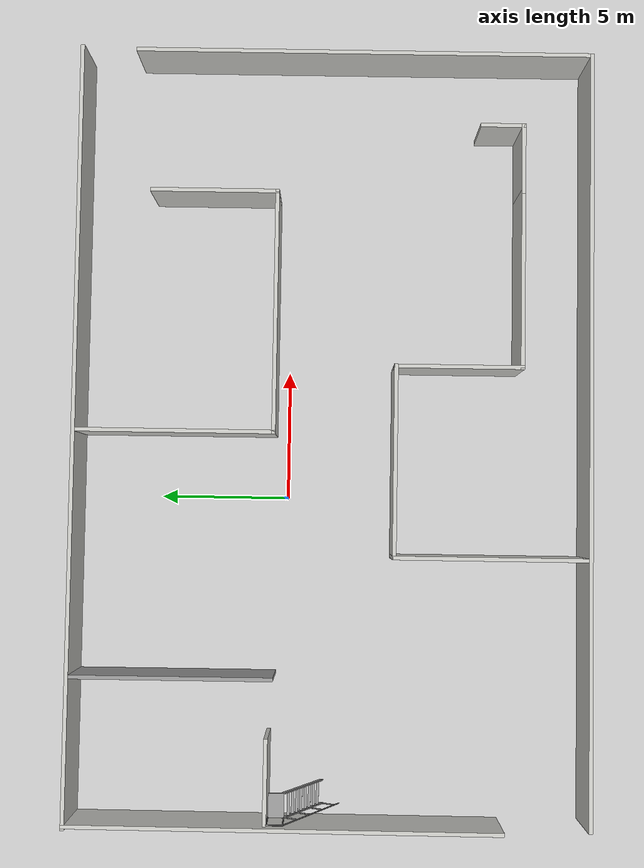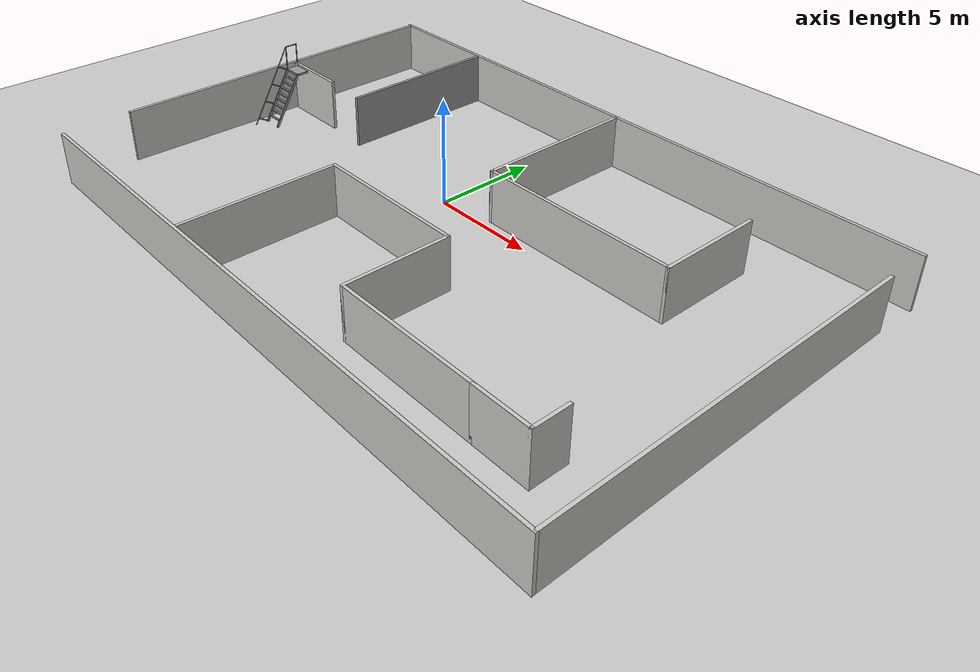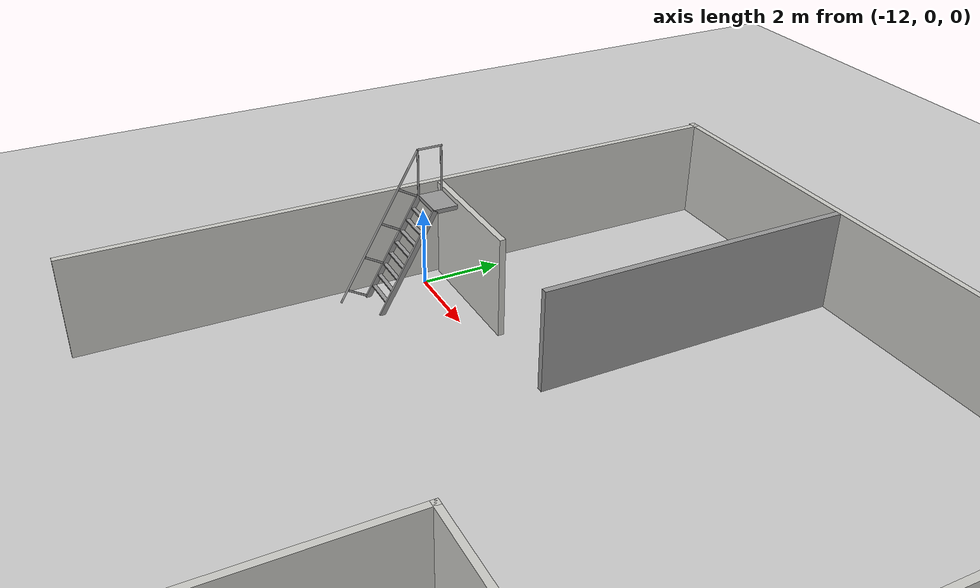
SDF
<sdf version="1.6">
 <world name="default">
  <light name="sun" type="directional">
   <pose>0 0 10 0 -0 0</pose>
   <diffuse>0.8 0.8 0.8 1</diffuse>
   <specular>0.2 0.2 0.2 1</specular>
   <attenuation>
    <range>1000</range>
    <constant>0.9</constant>
    <linear>0.01</linear>
    <quadratic>0.001</quadratic>
   </attenuation>
   <direction>-0.5 0.1 -0.9</direction>
  </light>
  <model name="ground_plane">
   <static>1</static>
   <link name="link">
    <collision name="collision">
     <geometry><plane><normal>0 0 1</normal><size>100 100</size></plane></geometry>
     <surface>
      <contact><collide_bitmask>65535</collide_bitmask></contact>
      <friction><ode><mu>100</mu><mu2>50</mu2></ode></friction>
     </surface>
    </collision>
    <visual name="visual">
     <cast_shadows>0</cast_shadows>
     <geometry><plane><normal>0 0 1</normal><size>100 100</size></plane></geometry>
     <material>
      <script><uri>file://media/materials/scripts/gazebo.material</uri><name>Gazebo/Grey</name></script>
     </material>
    </visual>
   </link>
  </model>
  <gravity>0 0 -9.8</gravity>
  <magnetic_field>6e-06 2.3e-05 -4.2e-05</magnetic_field>
  <atmosphere type="adiabatic"/>
  <physics name="default_physics" default="0" type="ode">
   <max_step_size>0.001</max_step_size>
   <real_time_factor>1</real_time_factor>
   <real_time_update_rate>1000</real_time_update_rate>
  </physics>
  <scene><ambient>0.4 0.4 0.4 1</ambient><background>0.7 0.7 0.7 1</background><shadows>1</shadows></scene>
  <spherical_coordinates>
   <surface_model>EARTH_WGS84</surface_model>
   <latitude_deg>0</latitude_deg>
   <longitude_deg>0</longitude_deg>
   <elevation>0</elevation>
   <heading_deg>0</heading_deg>
  </spherical_coordinates>
  <model name="factory">
   <pose>2.46352 -1.71456 0 0 -0 0</pose>
   <link name="Wall_0">
    <collision name="Wall_0_Collision">
     <geometry><box><size>29.9191 0.15 2.5</size></box></geometry>
     <pose>0 0 1.25 0 -0 0</pose>
    </collision>
    <visual name="Wall_0_Visual">
     <pose>0 0 1.25 0 -0 0</pose>
     <geometry><box><size>29.9191 0.15 2.5</size></box></geometry>
     <material>
      <script><uri>file://media/materials/scripts/gazebo.material</uri><name>Gazebo/CeilingTiled</name></script>
      <ambient>1 1 1 1</ambient>
     </material>
     <meta><layer>0</layer></meta>
    </visual>
    <pose>0.043969 -9.92957 0 0 -0 0</pose>
   </link>
   <link name="Wall_11">
    <collision name="Wall_11_Collision">
     <geometry><box><size>7.75 0.15 2.5</size></box></geometry>
     <pose>0 0 1.25 0 -0 0</pose>
    </collision>
    <visual name="Wall_11_Visual">
     <pose>0 0 1.25 0 -0 0</pose>
     <geometry><box><size>7.75 0.15 2.5</size></box></geometry>
     <material>
      <script><uri>file://media/materials/scripts/gazebo.material</uri><name>Gazebo/Grey</name></script>
      <ambient>1 1 1 1</ambient>
     </material>
     <meta><layer>0</layer></meta>
    </visual>
    <pose>-9.34775 5.97949 0 0 -0 1.5708</pose>
   </link>
   <link name="Wall_15">
    <collision name="Wall_15_Collision">
     <geometry><box><size>3.25 0.15 2.5</size></box></geometry>
     <pose>0 0 1.25 0 -0 0</pose>
    </collision>
    <visual name="Wall_15_Visual">
     <pose>0 0 1.25 0 -0 0</pose>
     <geometry><box><size>3.25 0.15 2.5</size></box></geometry>
     <material>
      <script><uri>file://media/materials/scripts/gazebo.material</uri><name>Gazebo/CeilingTiled</name></script>
      <ambient>1 1 1 1</ambient>
     </material>
     <meta><layer>0</layer></meta>
    </visual>
    <pose>-13.1915 2.33437 0 0 -0 3.14159</pose>
   </link>
   <link name="Wall_17">
    <collision name="Wall_17_Collision">
     <geometry><box><size>7.75 0.15 2.5</size></box></geometry>
     <pose>0 0 1.25 0 -0 0</pose>
    </collision>
    <visual name="Wall_17_Visual">
     <pose>0 0 1.25 0 -0 0</pose>
     <geometry><box><size>7.75 0.15 2.5</size></box></geometry>
     <material>
      <script><uri>file://media/materials/scripts/gazebo.material</uri><name>Gazebo/CeilingTiled</name></script>
      <ambient>1 1 1 1</ambient>
     </material>
     <meta><layer>0</layer></meta>
    </visual>
    <pose>0.048773 6.04077 0 0 -0 -1.5708</pose>
   </link>
   <link name="Wall_18">
    <collision name="Wall_18_Collision">
     <geometry><box><size>9.5 0.15 2.5</size></box></geometry>
     <pose>0 0 1.25 0 -0 0</pose>
    </collision>
    <visual name="Wall_18_Visual">
     <pose>0 0 1.25 0 -0 0</pose>
     <geometry><box><size>9.5 0.15 2.5</size></box></geometry>
     <material>
      <script><uri>file://media/materials/scripts/gazebo.material</uri><name>Gazebo/CeilingTiled</name></script>
      <ambient>1 1 1 1</ambient>
     </material>
     <meta><layer>0</layer></meta>
    </visual>
    <pose>4.72377 2.24077 0 0 -0 0</pose>
   </link>
   <link name="Wall_19">
    <collision name="Wall_19_Collision">
     <geometry><box><size>5 0.15 2.5</size></box></geometry>
     <pose>0 0 1.25 0 -0 0</pose>
    </collision>
    <visual name="Wall_19_Visual">
     <pose>0 0 1.25 0 -0 0</pose>
     <geometry><box><size>5 0.15 2.5</size></box></geometry>
     <material>
      <script><uri>file://media/materials/scripts/gazebo.material</uri><name>Gazebo/CeilingTiled</name></script>
      <ambient>1 1 1 1</ambient>
     </material>
     <meta><layer>0</layer></meta>
    </visual>
    <pose>9.39877 4.66577 0 0 -0 1.5708</pose>
   </link>
   <link name="Wall_2">
    <collision name="Wall_2_Collision">
     <geometry><box><size>17.75 0.15 2.5</size></box></geometry>
     <pose>0 0 1.25 0 -0 0</pose>
    </collision>
    <visual name="Wall_2_Visual">
     <pose>0 0 1.25 0 -0 0</pose>
     <geometry><box><size>17.75 0.15 2.5</size></box></geometry>
     <material>
      <script><uri>file://media/materials/scripts/gazebo.material</uri><name>Gazebo/CeilingTiled</name></script>
      <ambient>1 1 1 1</ambient>
     </material>
     <meta><layer>0</layer></meta>
    </visual>
    <pose>14.9283 -1.0482 0 0 -0 1.5708</pose>
   </link>
   <link name="Wall_22">
    <collision name="Wall_22_Collision">
     <geometry><box><size>7.5 0.15 2.5</size></box></geometry>
     <pose>0 0 1.25 0 -0 0</pose>
    </collision>
    <visual name="Wall_22_Visual">
     <pose>0 0 1.25 0 -0 0</pose>
     <geometry><box><size>7.5 0.15 2.5</size></box></geometry>
     <material>
      <script><uri>file://media/materials/scripts/gazebo.material</uri><name>Gazebo/CeilingTiled</name></script>
      <ambient>1 1 1 1</ambient>
     </material>
     <meta><layer>0</layer></meta>
    </visual>
    <pose>-4.68887 -6.11162 0 0 -0 1.5708</pose>
   </link>
   <link name="Wall_23">
    <collision name="Wall_23_Collision">
     <geometry><box><size>7.5 0.15 2.5</size></box></geometry>
     <pose>0 0 1.25 0 -0 0</pose>
    </collision>
    <visual name="Wall_23_Visual">
     <pose>0 0 1.25 0 -0 0</pose>
     <geometry><box><size>7.5 0.15 2.5</size></box></geometry>
     <material>
      <script><uri>file://media/materials/scripts/gazebo.material</uri><name>Gazebo/CeilingTiled</name></script>
      <ambient>1 1 1 1</ambient>
     </material>
     <meta><layer>0</layer></meta>
    </visual>
    <pose>-1.01387 -2.43662 0 0 -0 0</pose>
   </link>
   <link name="Wall_24">
    <collision name="Wall_24_Collision">
     <geometry><box><size>5 0.15 2.5</size></box></geometry>
     <pose>0 0 1.25 0 -0 0</pose>
    </collision>
    <visual name="Wall_24_Visual">
     <pose>0 0 1.25 0 -0 0</pose>
     <geometry><box><size>5 0.15 2.5</size></box></geometry>
     <material>
      <script><uri>file://media/materials/scripts/gazebo.material</uri><name>Gazebo/CeilingTiled</name></script>
      <ambient>1 1 1 1</ambient>
     </material>
     <meta><layer>0</layer></meta>
    </visual>
    <pose>2.66113 -4.86162 0 0 -0 -1.5708</pose>
   </link>
   <link name="Wall_25">
    <collision name="Wall_25_Collision">
     <geometry><box><size>7 0.15 2.5</size></box></geometry>
     <pose>0 0 1.25 0 -0 0</pose>
    </collision>
    <visual name="Wall_25_Visual">
     <pose>0 0 1.25 0 -0 0</pose>
     <geometry><box><size>7 0.15 2.5</size></box></geometry>
     <material>
      <script><uri>file://media/materials/scripts/gazebo.material</uri><name>Gazebo/CeilingTiled</name></script>
      <ambient>1 1 1 1</ambient>
     </material>
     <meta><layer>0</layer></meta>
    </visual>
    <pose>6.08613 -7.28662 0 0 -0 0</pose>
   </link>
   <link name="Wall_26">
    <collision name="Wall_26_Collision">
     <geometry><box><size>2.75 0.15 2.5</size></box></geometry>
     <pose>0 0 1.25 0 -0 0</pose>
    </collision>
    <visual name="Wall_26_Visual">
     <pose>0 0 1.25 0 -0 0</pose>
     <geometry><box><size>2.75 0.15 2.5</size></box></geometry>
     <material>
      <script><uri>file://media/materials/scripts/gazebo.material</uri><name>Gazebo/CeilingTiled</name></script>
      <ambient>1 1 1 1</ambient>
     </material>
     <meta><layer>0</layer></meta>
    </visual>
    <pose>10.8111 -7.28662 0 0 -0 0</pose>
   </link>
   <link name="Wall_27">
    <collision name="Wall_27_Collision">
     <geometry><box><size>1.75 0.15 2.5</size></box></geometry>
     <pose>0 0 1.25 0 -0 0</pose>
    </collision>
    <visual name="Wall_27_Visual">
     <pose>0 0 1.25 0 -0 0</pose>
     <geometry><box><size>1.75 0.15 2.5</size></box></geometry>
     <material>
      <script><uri>file://media/materials/scripts/gazebo.material</uri><name>Gazebo/CeilingTiled</name></script>
      <ambient>1 1 1 1</ambient>
     </material>
     <meta><layer>0</layer></meta>
    </visual>
    <pose>12.1111 -6.48662 0 0 -0 1.5708</pose>
   </link>
   <link name="Wall_4">
    <collision name="Wall_4_Collision">
     <geometry><box><size>30.1415 0.15 2.5</size></box></geometry>
     <pose>0 0 1.25 0 -0 0</pose>
    </collision>
    <visual name="Wall_4_Visual">
     <pose>0 0 1.25 0 -0 0</pose>
     <geometry><box><size>30.1415 0.15 2.5</size></box></geometry>
     <material>
      <script><uri>file://media/materials/scripts/gazebo.material</uri><name>Gazebo/CeilingTiled</name></script>
      <ambient>0.533333 0.541176 0.521569 1</ambient>
     </material>
     <meta><layer>0</layer></meta>
    </visual>
    <pose>0.000146 9.92423 0 0 -0 -3.14124</pose>
   </link>
   <link name="Wall_5">
    <collision name="Wall_5_Collision">
     <geometry><box><size>16.6876 0.15 2.5</size></box></geometry>
     <pose>0 0 1.25 0 -0 0</pose>
    </collision>
    <visual name="Wall_5_Visual">
     <pose>0 0 1.25 0 -0 0</pose>
     <geometry><box><size>16.6876 0.15 2.5</size></box></geometry>
     <material>
      <script><uri>file://media/materials/scripts/gazebo.material</uri><name>Gazebo/CeilingTiled</name></script>
      <ambient>1 1 1 1</ambient>
     </material>
     <meta><layer>0</layer></meta>
    </visual>
    <pose>-14.9602 1.6502 0 0 -0 -1.57508</pose>
   </link>
   <static>1</static>
  </model>
  <model name="ladder_60deg_1rails">
   <static>1</static>
   <link name="step0">
    <pose>0 0.15396 0.266667 0 -0 0</pose>
    <inertial>
     <mass>9.75482</mass>
     <inertia>
      <ixx>0.00957124</ixx>
      <iyy>0.65963</iyy>
      <izz>0.666842</izz>
      <ixy>0</ixy>
      <ixz>0</ixz>
      <iyz>0</iyz>
     </inertia>
    </inertial>
    <collision name="collision"><geometry><box><size>0.9 0.1016 0.0381</size></box></geometry></collision>
    <visual name="visual">
     <geometry><box><size>0.9 0.1016 0.0381</size></box></geometry>
     <material>
      <script><uri>file://media/materials/scripts/gazebo.material</uri><name>Gazebo/Grey</name></script>
     </material>
    </visual>
   </link>
   <link name="step1">
    <pose>0 0.30792 0.533333 0 -0 0</pose>
    <inertial>
     <mass>9.75482</mass>
     <inertia>
      <ixx>0.00957124</ixx>
      <iyy>0.65963</iyy>
      <izz>0.666842</izz>
      <ixy>0</ixy>
      <ixz>0</ixz>
      <iyz>0</iyz>
     </inertia>
    </inertial>
    <collision name="collision"><geometry><box><size>0.9 0.1016 0.0381</size></box></geometry></collision>
    <visual name="visual">
     <geometry><box><size>0.9 0.1016 0.0381</size></box></geometry>
     <material>
      <script><uri>file://media/materials/scripts/gazebo.material</uri><name>Gazebo/Grey</name></script>
     </material>
    </visual>
   </link>
   <link name="step2">
    <pose>0 0.46188 0.8 0 -0 0</pose>
    <inertial>
     <mass>9.75482</mass>
     <inertia>
      <ixx>0.00957124</ixx>
      <iyy>0.65963</iyy>
      <izz>0.666842</izz>
      <ixy>0</ixy>
      <ixz>0</ixz>
      <iyz>0</iyz>
     </inertia>
    </inertial>
    <collision name="collision"><geometry><box><size>0.9 0.1016 0.0381</size></box></geometry></collision>
    <visual name="visual">
     <geometry><box><size>0.9 0.1016 0.0381</size></box></geometry>
     <material>
      <script><uri>file://media/materials/scripts/gazebo.material</uri><name>Gazebo/Grey</name></script>
     </material>
    </visual>
   </link>
   <link name="step3">
    <pose>0 0.61584 1.06667 0 -0 0</pose>
    <inertial>
     <mass>9.75482</mass>
     <inertia>
      <ixx>0.00957124</ixx>
      <iyy>0.65963</iyy>
      <izz>0.666842</izz>
      <ixy>0</ixy>
      <ixz>0</ixz>
      <iyz>0</iyz>
     </inertia>
    </inertial>
    <collision name="collision"><geometry><box><size>0.9 0.1016 0.0381</size></box></geometry></collision>
    <visual name="visual">
     <geometry><box><size>0.9 0.1016 0.0381</size></box></geometry>
     <material>
      <script><uri>file://media/materials/scripts/gazebo.material</uri><name>Gazebo/Grey</name></script>
     </material>
    </visual>
   </link>
   <link name="step4">
    <pose>0 0.7698 1.33333 0 -0 0</pose>
    <inertial>
     <mass>9.75482</mass>
     <inertia>
      <ixx>0.00957124</ixx>
      <iyy>0.65963</iyy>
      <izz>0.666842</izz>
      <ixy>0</ixy>
      <ixz>0</ixz>
      <iyz>0</iyz>
     </inertia>
    </inertial>
    <collision name="collision"><geometry><box><size>0.9 0.1016 0.0381</size></box></geometry></collision>
    <visual name="visual">
     <geometry><box><size>0.9 0.1016 0.0381</size></box></geometry>
     <material>
      <script><uri>file://media/materials/scripts/gazebo.material</uri><name>Gazebo/Grey</name></script>
     </material>
    </visual>
   </link>
   <link name="step5">
    <pose>0 0.92376 1.6 0 -0 0</pose>
    <inertial>
     <mass>9.75482</mass>
     <inertia>
      <ixx>0.00957124</ixx>
      <iyy>0.65963</iyy>
      <izz>0.666842</izz>
      <ixy>0</ixy>
      <ixz>0</ixz>
      <iyz>0</iyz>
     </inertia>
    </inertial>
    <collision name="collision"><geometry><box><size>0.9 0.1016 0.0381</size></box></geometry></collision>
    <visual name="visual">
     <geometry><box><size>0.9 0.1016 0.0381</size></box></geometry>
     <material>
      <script><uri>file://media/materials/scripts/gazebo.material</uri><name>Gazebo/Grey</name></script>
     </material>
    </visual>
   </link>
   <link name="step6">
    <pose>0 1.07772 1.86667 0 -0 0</pose>
    <inertial>
     <mass>9.75482</mass>
     <inertia>
      <ixx>0.00957124</ixx>
      <iyy>0.65963</iyy>
      <izz>0.666842</izz>
      <ixy>0</ixy>
      <ixz>0</ixz>
      <iyz>0</iyz>
     </inertia>
    </inertial>
    <collision name="collision"><geometry><box><size>0.9 0.1016 0.0381</size></box></geometry></collision>
    <visual name="visual">
     <geometry><box><size>0.9 0.1016 0.0381</size></box></geometry>
     <material>
      <script><uri>file://media/materials/scripts/gazebo.material</uri><name>Gazebo/Grey</name></script>
     </material>
    </visual>
   </link>
   <link name="step7">
    <pose>0 1.23168 2.13333 0 -0 0</pose>
    <inertial>
     <mass>9.75482</mass>
     <inertia>
      <ixx>0.00957124</ixx>
      <iyy>0.65963</iyy>
      <izz>0.666842</izz>
      <ixy>0</ixy>
      <ixz>0</ixz>
      <iyz>0</iyz>
     </inertia>
    </inertial>
    <collision name="collision"><geometry><box><size>0.9 0.1016 0.0381</size></box></geometry></collision>
    <visual name="visual">
     <geometry><box><size>0.9 0.1016 0.0381</size></box></geometry>
     <material>
      <script><uri>file://media/materials/scripts/gazebo.material</uri><name>Gazebo/Grey</name></script>
     </material>
    </visual>
   </link>
   <link name="landing">
    <pose>0 1.68564 2.4 0 -0 0</pose>
    <inertial>
     <mass>57.6072</mass>
     <inertia><ixx>1.73518</ixx><iyy>3.89545</iyy><izz>5.6167</izz><ixy>0</ixy><ixz>0</ixz><iyz>0</iyz></inertia>
    </inertial>
    <collision name="collision"><geometry><box><size>0.9 0.6 0.1016</size></box></geometry></collision>
    <visual name="visual">
     <geometry><box><size>0.9 0.6 0.1016</size></box></geometry>
     <material>
      <script><uri>file://media/materials/scripts/gazebo.material</uri><name>Gazebo/Grey</name></script>
     </material>
    </visual>
   </link>
   <link name="left_side_wall">
    <pose>-0.45 0.69282 1.2 1.0472 -0 0</pose>
    <collision name="collision"><geometry><box><size>0.0508 2.85128 0.13</size></box></geometry></collision>
    <visual name="visual">
     <geometry><box><size>0.0508 2.85128 0.13</size></box></geometry>
     <material>
      <script><uri>file://media/materials/scripts/gazebo.material</uri><name>Gazebo/Grey</name></script>
     </material>
    </visual>
   </link>
   <link name="right_side_wall">
    <pose>0.45 0.69282 1.2 1.0472 -0 0</pose>
    <collision name="collision"><geometry><box><size>0.0508 2.85128 0.13</size></box></geometry></collision>
    <visual name="visual">
     <geometry><box><size>0.0508 2.85128 0.13</size></box></geometry>
     <material>
      <script><uri>file://media/materials/scripts/gazebo.material</uri><name>Gazebo/Grey</name></script>
     </material>
    </visual>
   </link>
   <link name="left_railing_long">
    <pose>-0.45 0.34282 1.80622 -0.523599 0 0</pose>
    <collision name="collision">
     <geometry><cylinder><radius>0.02413</radius><length>4.17128</length></cylinder></geometry>
    </collision>
    <visual name="visual">
     <geometry><cylinder><radius>0.02413</radius><length>4.17128</length></cylinder></geometry>
     <material>
      <script><uri>file://media/materials/scripts/gazebo.material</uri><name>Gazebo/Grey</name></script>
     </material>
    </visual>
   </link>
   <link name="left_railing_upright0">
    <pose>-0.45 -0.274963 0.15875 1.0472 -0 0</pose>
    <collision name="collision">
     <geometry><cylinder><radius>0.02413</radius><length>0.541218</length></cylinder></geometry>
    </collision>
    <visual name="visual">
     <geometry><cylinder><radius>0.02413</radius><length>0.541218</length></cylinder></geometry>
     <material>
      <script><uri>file://media/materials/scripts/gazebo.material</uri><name>Gazebo/Grey</name></script>
     </material>
    </visual>
   </link>
   <link name="left_railing_upright1">
    <pose>-0.45 0.186917 0.95875 1.0472 -0 0</pose>
    <collision name="collision">
     <geometry><cylinder><radius>0.02413</radius><length>0.541218</length></cylinder></geometry>
    </collision>
    <visual name="visual">
     <geometry><cylinder><radius>0.02413</radius><length>0.541218</length></cylinder></geometry>
     <material>
      <script><uri>file://media/materials/scripts/gazebo.material</uri><name>Gazebo/Grey</name></script>
     </material>
    </visual>
   </link>
   <link name="left_railing_upright2">
    <pose>-0.45 0.648797 1.75875 1.0472 -0 0</pose>
    <collision name="collision">
     <geometry><cylinder><radius>0.02413</radius><length>0.541218</length></cylinder></geometry>
    </collision>
    <visual name="visual">
     <geometry><cylinder><radius>0.02413</radius><length>0.541218</length></cylinder></geometry>
     <material>
      <script><uri>file://media/materials/scripts/gazebo.material</uri><name>Gazebo/Grey</name></script>
     </material>
    </visual>
   </link>
   <link name="left_railing_upright3">
    <pose>-0.45 1.11068 2.55875 1.0472 -0 0</pose>
    <collision name="collision">
     <geometry><cylinder><radius>0.02413</radius><length>0.541218</length></cylinder></geometry>
    </collision>
    <visual name="visual">
     <geometry><cylinder><radius>0.02413</radius><length>0.541218</length></cylinder></geometry>
     <material>
      <script><uri>file://media/materials/scripts/gazebo.material</uri><name>Gazebo/Grey</name></script>
     </material>
    </visual>
   </link>
   <link name="left_railing_landing_top">
    <pose>-0.45 1.68564 3.61244 1.5708 -0 0</pose>
    <collision name="collision">
     <geometry><cylinder><radius>0.02413</radius><length>0.64826</length></cylinder></geometry>
    </collision>
    <visual name="visual">
     <geometry><cylinder><radius>0.02413</radius><length>0.64826</length></cylinder></geometry>
     <material>
      <script><uri>file://media/materials/scripts/gazebo.material</uri><name>Gazebo/Grey</name></script>
     </material>
    </visual>
   </link>
   <link name="left_railing_landing_upright_0">
    <pose>-0.45 1.38564 3.00622 0 -0 0</pose>
    <collision name="collision">
     <geometry><cylinder><radius>0.02413</radius><length>1.21244</length></cylinder></geometry>
    </collision>
    <visual name="visual">
     <geometry><cylinder><radius>0.02413</radius><length>1.21244</length></cylinder></geometry>
     <material>
      <script><uri>file://media/materials/scripts/gazebo.material</uri><name>Gazebo/Grey</name></script>
     </material>
    </visual>
   </link>
   <link name="left_railing_landing_upright_1">
    <pose>-0.45 1.98564 3.00622 0 -0 0</pose>
    <collision name="collision">
     <geometry><cylinder><radius>0.02413</radius><length>1.21244</length></cylinder></geometry>
    </collision>
    <visual name="visual">
     <geometry><cylinder><radius>0.02413</radius><length>1.21244</length></cylinder></geometry>
     <material>
      <script><uri>file://media/materials/scripts/gazebo.material</uri><name>Gazebo/Grey</name></script>
     </material>
    </visual>
   </link>
   <pose>-11.5594 -1.49682 0 0 -0 0</pose>
  </model>
 </world>
</sdf>
